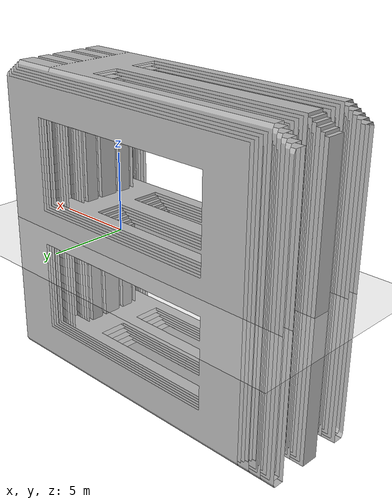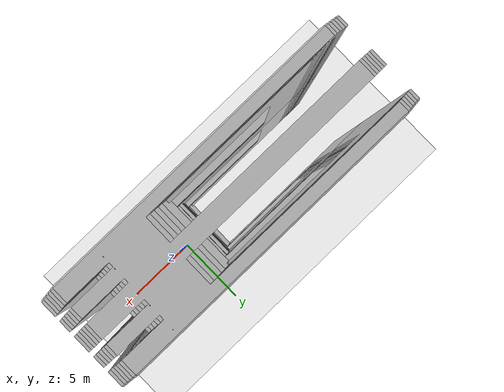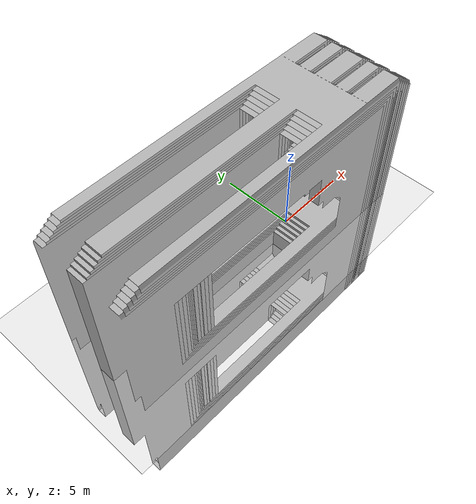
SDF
<?xml version="1.0" ?>
<sdf version="1.4">
  <world name="default">
    <physics type='ode'>
      <gravity>0 0 -9.81</gravity>
      <!-- max step size has to be a multiple of the desired task rate-->
      <max_step_size>0.001</max_step_size>
      <real_time_factor>1</real_time_factor>
    </physics>
    <!-- A global light source -->
    <include>
      <uri>model://sun</uri>
    </include>
    <!-- A ground plane -->
    <include>
      <uri>model://ground_plane</uri>
    </include>
    <include>
      <name>pallet</name>
      <uri>model://pallet</uri>
      <pose>1 0 0 0 0 3.14</pose>
    </include>
    <include>
      <name>pallet</name>
      <uri>model://pallet</uri>
      <pose>1.9 0 0 0 0 3.14</pose>
    </include>
    <include>
      <name>pallet</name>
      <uri>model://pallet</uri>
      <pose>2.7 0 0 0 0 3.14</pose>
    </include>
    <include>
      <name>pallet</name>
      <uri>model://pallet</uri>
      <pose>3.5 0 0 0 0 3.14</pose>
    </include>
    <include>
      <name>pallet</name>
      <uri>model://pallet</uri>
      <pose>1.25 0 0.175 0 0 3.14</pose>
    </include>
    <include>
      <name>pallet</name>
      <uri>model://pallet</uri>
      <pose>2.1 0 0.175 0 0 3.14</pose>
    </include>
    <include>
      <name>pallet</name>
      <uri>model://pallet</uri>
      <pose>3.25 0 0.175 0 0 3.14</pose>
    </include>
    <include>
      <name>pallet</name>
      <uri>model://pallet</uri>
      <pose>1.5 0 0.35 0 0 3.14</pose>
    </include>
    <include>
      <name>pallet</name>
      <uri>model://pallet</uri>
      <pose>2.2 0 0.35 0 0 3.14</pose>
    </include>
    <include>
      <name>pallet</name>
      <uri>model://pallet</uri>
      <pose>3 0 0.35 0 0 3.14</pose>
    </include>
    <include>
      <name>pallet</name>
      <uri>model://pallet</uri>
      <pose>1.75 0 0.525 0 0 3.14</pose>
    </include>
    <include>
      <name>pallet</name>
      <uri>model://pallet</uri>
      <pose>2.75 0 0.525 0 0 3.14</pose>
    </include>
    <include>
      <name>pallet</name>
      <uri>model://pallet</uri>
      <pose>2 0 0.7 0 0 3.14</pose>
    </include>
    <include>
      <name>pallet</name>
      <uri>model://pallet</uri>
      <pose>2.5 0 0.7 0 0 3.14</pose>
    </include>
    <include>
      <name>pallet</name>
      <uri>model://pallet</uri>
      <pose>2.25 0 0.875 0 0 3.14</pose>
    </include>
  </world>
</sdf>

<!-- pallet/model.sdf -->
<sdf version="1.4">
	<model name="pallet">
		<static>true</static>
		<link name="link">
			<pose>0 0 0.07 0 0 1.5708</pose>
			<collision name="collision">
				<geometry>
					<mesh>
						<uri>model://pallet_benchmark/mesh/pallet.dae</uri>
						<!-- original size = 1.016 x 0.090678 x 0.090678 m -->
						<!-- final size = 0.8 x 1.2 x 0.14 m -->
						<scale>0.7874 13.2336 1.5439</scale>
					</mesh>
				</geometry>
				<surface>
					<bounce>
						<restitution_coefficient>0.01</restitution_coefficient>
						<threshold>5.0</threshold>
					</bounce>
					<friction>
						<ode>
							<mu>10</mu>
							<mu2>10</mu2>
						</ode>
					</friction>
					<contact>
						<ode>
							<soft_cfm>0.001</soft_cfm>
							<kp>100000.0</kp>
							<kd>1000.0</kd>
						</ode>
					</contact>
				</surface>
			</collision>
			<visual name="visual">
				<geometry>
					<mesh>
						<uri>model://pallet_benchmark/mesh/pallet.dae</uri>
						<!-- original size = 1.016 x 0.090678 x 0.090678 m -->
						<!-- final size = 0.8 x 1.2 x 0.14 m -->
						<scale>0.7874 13.2336 1.5439</scale>
					</mesh>
				</geometry>
			</visual>
		</link>
	</model>
</sdf>
